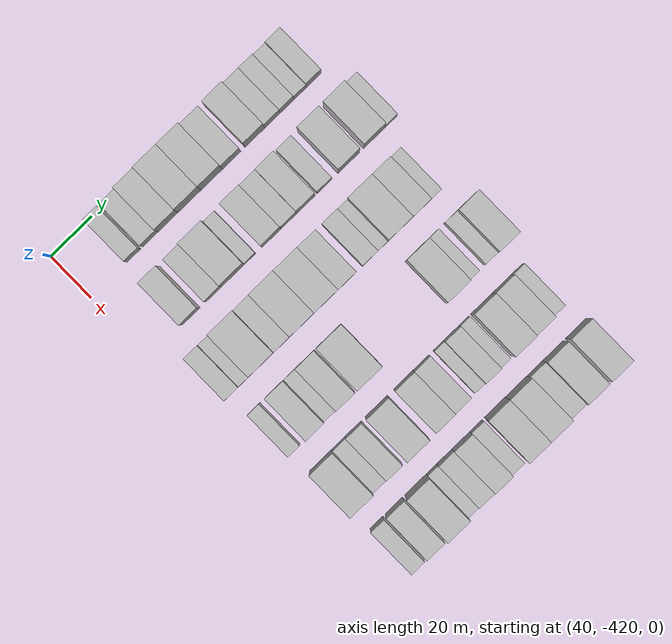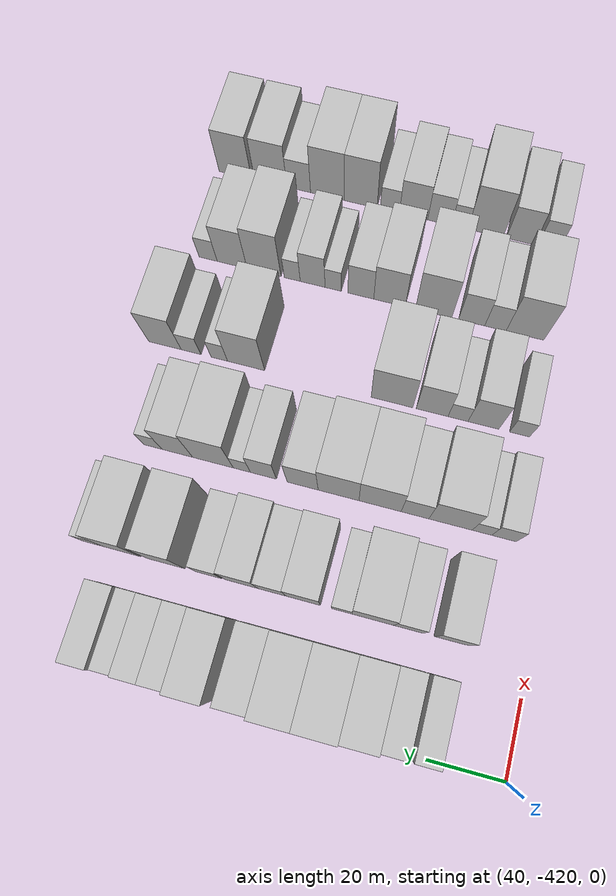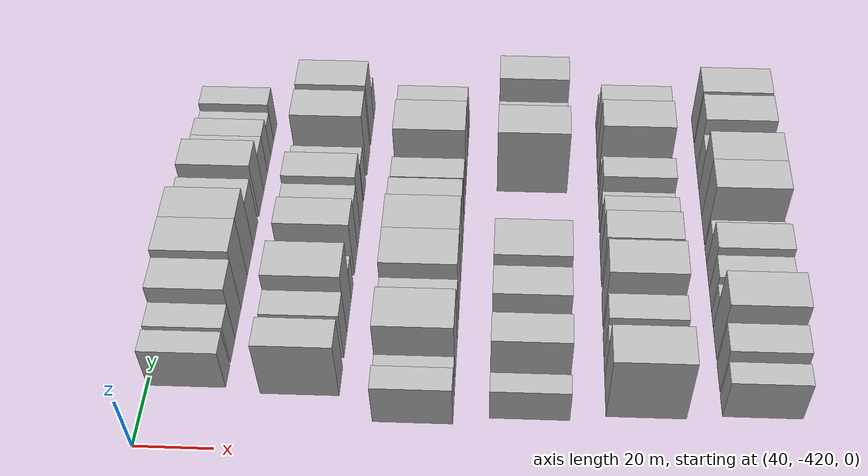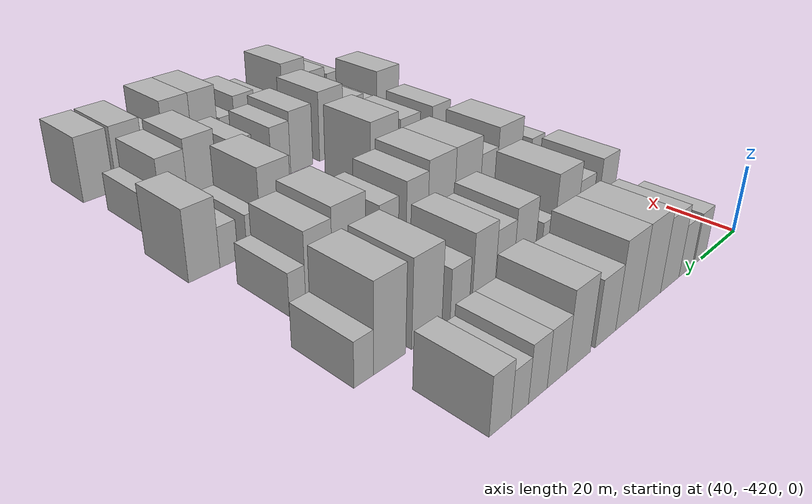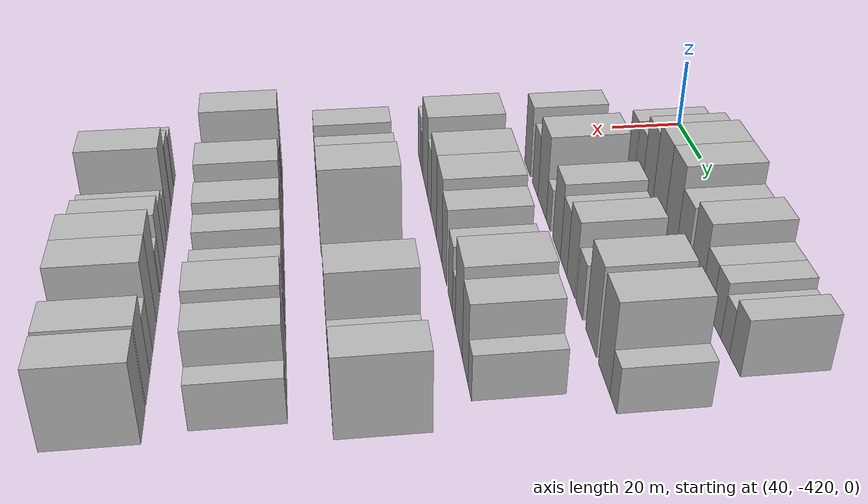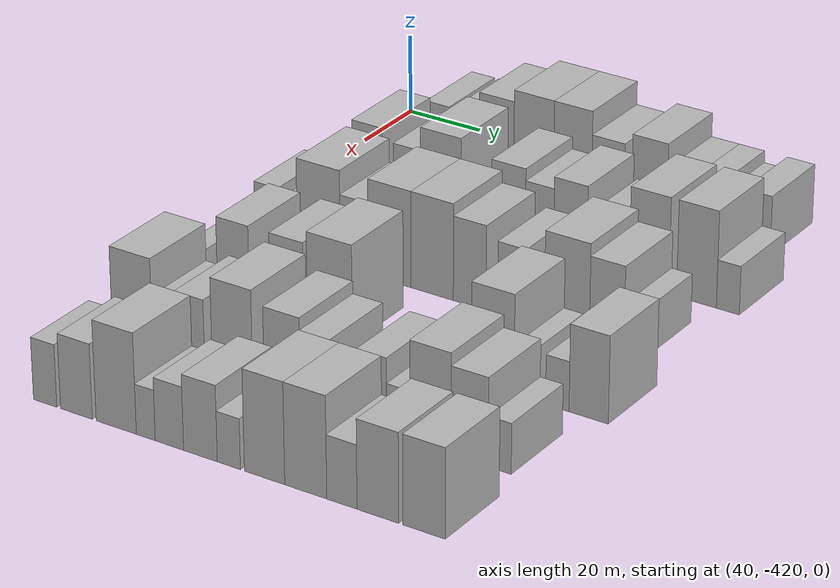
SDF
<sdf version="1.6">
 <world name="default">
  <model name="building_12">
   <static>1</static>
   <pose>50.0000 -399.0358 0 0.000000 0.000000 0.000000</pose>
   <link name="link">
    <pose>0 0 7.50 0 0 0</pose>
    <collision name="collision"><geometry><box><size>20.0000 6.5886 15.0000</size></box></geometry></collision>
    <visual name="visual">
     <cast_shadows>0</cast_shadows>
     <geometry><box><size>20.0000 6.5886 15.0000</size></box></geometry>
     <material>
      <script>
       <uri>model://HANNAS_wall/materials/scripts</uri>
       <uri>model://HANNAS_wall/materials/textures</uri>
       <name>vrc/HANNAS_wall</name>
      </script>
     </material>
    </visual>
   </link>
  </model>
  <model name="building_13">
   <static>1</static>
   <pose>50.0000 -391.0221 0 0.000000 0.000000 0.000000</pose>
   <link name="link">
    <pose>0 0 7.50 0 0 0</pose>
    <collision name="collision"><geometry><box><size>20.0000 7.4388 15.0000</size></box></geometry></collision>
    <visual name="visual">
     <cast_shadows>0</cast_shadows>
     <geometry><box><size>20.0000 7.4388 15.0000</size></box></geometry>
     <material>
      <script>
       <uri>model://HANNAS_wall/materials/scripts</uri>
       <uri>model://HANNAS_wall/materials/textures</uri>
       <name>vrc/HANNAS_wall</name>
      </script>
     </material>
    </visual>
   </link>
  </model>
  <model name="building_14">
   <static>1</static>
   <pose>50.0000 -382.4483 0 0.000000 0.000000 0.000000</pose>
   <link name="link">
    <pose>0 0 10.50 0 0 0</pose>
    <collision name="collision"><geometry><box><size>20.0000 9.7088 21.0000</size></box></geometry></collision>
    <visual name="visual">
     <cast_shadows>0</cast_shadows>
     <geometry><box><size>20.0000 9.7088 21.0000</size></box></geometry>
     <material>
      <script>
       <uri>model://HANNAS_wall/materials/scripts</uri>
       <uri>model://HANNAS_wall/materials/textures</uri>
       <name>vrc/HANNAS_wall</name>
      </script>
     </material>
    </visual>
   </link>
  </model>
  <model name="building_15">
   <static>1</static>
   <pose>50.0000 -372.0800 0 0.000000 0.000000 0.000000</pose>
   <link name="link">
    <pose>0 0 12.00 0 0 0</pose>
    <collision name="collision"><geometry><box><size>20.0000 11.0279 24.0000</size></box></geometry></collision>
    <visual name="visual">
     <cast_shadows>0</cast_shadows>
     <geometry><box><size>20.0000 11.0279 24.0000</size></box></geometry>
     <material>
      <script>
       <uri>model://HANNAS_wall/materials/scripts</uri>
       <uri>model://HANNAS_wall/materials/textures</uri>
       <name>vrc/HANNAS_wall</name>
      </script>
     </material>
    </visual>
   </link>
  </model>
  <model name="building_16">
   <static>1</static>
   <pose>50.0000 -361.3567 0 0.000000 0.000000 0.000000</pose>
   <link name="link">
    <pose>0 0 12.00 0 0 0</pose>
    <collision name="collision"><geometry><box><size>20.0000 10.4185 24.0000</size></box></geometry></collision>
    <visual name="visual">
     <cast_shadows>0</cast_shadows>
     <geometry><box><size>20.0000 10.4185 24.0000</size></box></geometry>
     <material>
      <script>
       <uri>model://HANNAS_wall/materials/scripts</uri>
       <uri>model://HANNAS_wall/materials/textures</uri>
       <name>vrc/HANNAS_wall</name>
      </script>
     </material>
    </visual>
   </link>
  </model>
  <model name="building_17">
   <static>1</static>
   <pose>50.0000 -351.7194 0 0.000000 0.000000 0.000000</pose>
   <link name="link">
    <pose>0 0 9.00 0 0 0</pose>
    <collision name="collision"><geometry><box><size>20.0000 8.8561 18.0000</size></box></geometry></collision>
    <visual name="visual">
     <cast_shadows>0</cast_shadows>
     <geometry><box><size>20.0000 8.8561 18.0000</size></box></geometry>
     <material>
      <script>
       <uri>model://HANNAS_wall/materials/scripts</uri>
       <uri>model://HANNAS_wall/materials/textures</uri>
       <name>vrc/HANNAS_wall</name>
      </script>
     </material>
    </visual>
   </link>
  </model>
  <model name="building_18">
   <static>1</static>
   <pose>50.0000 -340.5252 0 0.000000 0.000000 0.000000</pose>
   <link name="link">
    <pose>0 0 10.50 0 0 0</pose>
    <collision name="collision"><geometry><box><size>20.0000 9.5323 21.0000</size></box></geometry></collision>
    <visual name="visual">
     <cast_shadows>0</cast_shadows>
     <geometry><box><size>20.0000 9.5323 21.0000</size></box></geometry>
     <material>
      <script>
       <uri>model://HANNAS_wall/materials/scripts</uri>
       <uri>model://HANNAS_wall/materials/textures</uri>
       <name>vrc/HANNAS_wall</name>
      </script>
     </material>
    </visual>
   </link>
  </model>
  <model name="building_19">
   <static>1</static>
   <pose>50.0000 -332.0643 0 0.000000 0.000000 0.000000</pose>
   <link name="link">
    <pose>0 0 7.50 0 0 0</pose>
    <collision name="collision"><geometry><box><size>20.0000 7.3896 15.0000</size></box></geometry></collision>
    <visual name="visual">
     <cast_shadows>0</cast_shadows>
     <geometry><box><size>20.0000 7.3896 15.0000</size></box></geometry>
     <material>
      <script>
       <uri>model://HANNAS_wall/materials/scripts</uri>
       <uri>model://HANNAS_wall/materials/textures</uri>
       <name>vrc/HANNAS_wall</name>
      </script>
     </material>
    </visual>
   </link>
  </model>
  <model name="building_20">
   <static>1</static>
   <pose>50.0000 -324.9953 0 0.000000 0.000000 0.000000</pose>
   <link name="link">
    <pose>0 0 7.50 0 0 0</pose>
    <collision name="collision"><geometry><box><size>20.0000 6.7483 15.0000</size></box></geometry></collision>
    <visual name="visual">
     <cast_shadows>0</cast_shadows>
     <geometry><box><size>20.0000 6.7483 15.0000</size></box></geometry>
     <material>
      <script>
       <uri>model://HANNAS_wall/materials/scripts</uri>
       <uri>model://HANNAS_wall/materials/textures</uri>
       <name>vrc/HANNAS_wall</name>
      </script>
     </material>
    </visual>
   </link>
  </model>
  <model name="building_21">
   <static>1</static>
   <pose>50.0000 -318.6482 0 0.000000 0.000000 0.000000</pose>
   <link name="link">
    <pose>0 0 6.00 0 0 0</pose>
    <collision name="collision"><geometry><box><size>20.0000 5.9460 12.0000</size></box></geometry></collision>
    <visual name="visual">
     <cast_shadows>0</cast_shadows>
     <geometry><box><size>20.0000 5.9460 12.0000</size></box></geometry>
     <material>
      <script>
       <uri>model://HANNAS_wall/materials/scripts</uri>
       <uri>model://HANNAS_wall/materials/textures</uri>
       <name>vrc/HANNAS_wall</name>
      </script>
     </material>
    </visual>
   </link>
  </model>
  <model name="building_22">
   <static>1</static>
   <pose>50.0000 -312.0766 0 0.000000 0.000000 0.000000</pose>
   <link name="link">
    <pose>0 0 7.50 0 0 0</pose>
    <collision name="collision"><geometry><box><size>20.0000 7.1972 15.0000</size></box></geometry></collision>
    <visual name="visual">
     <cast_shadows>0</cast_shadows>
     <geometry><box><size>20.0000 7.1972 15.0000</size></box></geometry>
     <material>
      <script>
       <uri>model://HANNAS_wall/materials/scripts</uri>
       <uri>model://HANNAS_wall/materials/textures</uri>
       <name>vrc/HANNAS_wall</name>
      </script>
     </material>
    </visual>
   </link>
  </model>
  <model name="building_129">
   <static>1</static>
   <pose>79.0000 -399.5034 0 0.000000 0.000000 0.000000</pose>
   <link name="link">
    <pose>0 0 10.50 0 0 0</pose>
    <collision name="collision"><geometry><box><size>20.0000 8.5235 21.0000</size></box></geometry></collision>
    <visual name="visual">
     <cast_shadows>0</cast_shadows>
     <geometry><box><size>20.0000 8.5235 21.0000</size></box></geometry>
     <material>
      <script>
       <uri>model://HANNAS_wall/materials/scripts</uri>
       <uri>model://HANNAS_wall/materials/textures</uri>
       <name>vrc/HANNAS_wall</name>
      </script>
     </material>
    </visual>
   </link>
  </model>
  <model name="building_130">
   <static>1</static>
   <pose>79.0000 -388.4443 0 0.000000 0.000000 0.000000</pose>
   <link name="link">
    <pose>0 0 9.00 0 0 0</pose>
    <collision name="collision"><geometry><box><size>20.0000 7.5946 18.0000</size></box></geometry></collision>
    <visual name="visual">
     <cast_shadows>0</cast_shadows>
     <geometry><box><size>20.0000 7.5946 18.0000</size></box></geometry>
     <material>
      <script>
       <uri>model://HANNAS_wall/materials/scripts</uri>
       <uri>model://HANNAS_wall/materials/textures</uri>
       <name>vrc/HANNAS_wall</name>
      </script>
     </material>
    </visual>
   </link>
  </model>
  <model name="building_131">
   <static>1</static>
   <pose>79.0000 -379.1052 0 0.000000 0.000000 0.000000</pose>
   <link name="link">
    <pose>0 0 12.00 0 0 0</pose>
    <collision name="collision"><geometry><box><size>20.0000 11.0837 24.0000</size></box></geometry></collision>
    <visual name="visual">
     <cast_shadows>0</cast_shadows>
     <geometry><box><size>20.0000 11.0837 24.0000</size></box></geometry>
     <material>
      <script>
       <uri>model://HANNAS_wall/materials/scripts</uri>
       <uri>model://HANNAS_wall/materials/textures</uri>
       <name>vrc/HANNAS_wall</name>
      </script>
     </material>
    </visual>
   </link>
  </model>
  <model name="building_132">
   <static>1</static>
   <pose>79.0000 -370.8885 0 0.000000 0.000000 0.000000</pose>
   <link name="link">
    <pose>0 0 6.00 0 0 0</pose>
    <collision name="collision"><geometry><box><size>20.0000 5.3498 12.0000</size></box></geometry></collision>
    <visual name="visual">
     <cast_shadows>0</cast_shadows>
     <geometry><box><size>20.0000 5.3498 12.0000</size></box></geometry>
     <material>
      <script>
       <uri>model://HANNAS_wall/materials/scripts</uri>
       <uri>model://HANNAS_wall/materials/textures</uri>
       <name>vrc/HANNAS_wall</name>
      </script>
     </material>
    </visual>
   </link>
  </model>
  <model name="building_133">
   <static>1</static>
   <pose>79.0000 -360.6384 0 0.000000 0.000000 0.000000</pose>
   <link name="link">
    <pose>0 0 10.50 0 0 0</pose>
    <collision name="collision"><geometry><box><size>20.0000 9.1504 21.0000</size></box></geometry></collision>
    <visual name="visual">
     <cast_shadows>0</cast_shadows>
     <geometry><box><size>20.0000 9.1504 21.0000</size></box></geometry>
     <material>
      <script>
       <uri>model://HANNAS_wall/materials/scripts</uri>
       <uri>model://HANNAS_wall/materials/textures</uri>
       <name>vrc/HANNAS_wall</name>
      </script>
     </material>
    </visual>
   </link>
  </model>
  <model name="building_134">
   <static>1</static>
   <pose>79.0000 -352.2799 0 0.000000 0.000000 0.000000</pose>
   <link name="link">
    <pose>0 0 9.00 0 0 0</pose>
    <collision name="collision"><geometry><box><size>20.0000 7.5666 18.0000</size></box></geometry></collision>
    <visual name="visual">
     <cast_shadows>0</cast_shadows>
     <geometry><box><size>20.0000 7.5666 18.0000</size></box></geometry>
     <material>
      <script>
       <uri>model://HANNAS_wall/materials/scripts</uri>
       <uri>model://HANNAS_wall/materials/textures</uri>
       <name>vrc/HANNAS_wall</name>
      </script>
     </material>
    </visual>
   </link>
  </model>
  <model name="building_135">
   <static>1</static>
   <pose>79.0000 -344.0554 0 0.000000 0.000000 0.000000</pose>
   <link name="link">
    <pose>0 0 10.50 0 0 0</pose>
    <collision name="collision"><geometry><box><size>20.0000 8.8823 21.0000</size></box></geometry></collision>
    <visual name="visual">
     <cast_shadows>0</cast_shadows>
     <geometry><box><size>20.0000 8.8823 21.0000</size></box></geometry>
     <material>
      <script>
       <uri>model://HANNAS_wall/materials/scripts</uri>
       <uri>model://HANNAS_wall/materials/textures</uri>
       <name>vrc/HANNAS_wall</name>
      </script>
     </material>
    </visual>
   </link>
  </model>
  <model name="building_136">
   <static>1</static>
   <pose>79.0000 -335.0588 0 0.000000 0.000000 0.000000</pose>
   <link name="link">
    <pose>0 0 7.50 0 0 0</pose>
    <collision name="collision"><geometry><box><size>20.0000 7.1111 15.0000</size></box></geometry></collision>
    <visual name="visual">
     <cast_shadows>0</cast_shadows>
     <geometry><box><size>20.0000 7.1111 15.0000</size></box></geometry>
     <material>
      <script>
       <uri>model://HANNAS_wall/materials/scripts</uri>
       <uri>model://HANNAS_wall/materials/textures</uri>
       <name>vrc/HANNAS_wall</name>
      </script>
     </material>
    </visual>
   </link>
  </model>
  <model name="building_137">
   <static>1</static>
   <pose>79.0000 -323.3346 0 0.000000 0.000000 0.000000</pose>
   <link name="link">
    <pose>0 0 12.00 0 0 0</pose>
    <collision name="collision"><geometry><box><size>20.0000 10.3372 24.0000</size></box></geometry></collision>
    <visual name="visual">
     <cast_shadows>0</cast_shadows>
     <geometry><box><size>20.0000 10.3372 24.0000</size></box></geometry>
     <material>
      <script>
       <uri>model://HANNAS_wall/materials/scripts</uri>
       <uri>model://HANNAS_wall/materials/textures</uri>
       <name>vrc/HANNAS_wall</name>
      </script>
     </material>
    </visual>
   </link>
  </model>
  <model name="building_138">
   <static>1</static>
   <pose>79.0000 -311.0484 0 0.000000 0.000000 0.000000</pose>
   <link name="link">
    <pose>0 0 12.00 0 0 0</pose>
    <collision name="collision"><geometry><box><size>20.0000 10.2352 24.0000</size></box></geometry></collision>
    <visual name="visual">
     <cast_shadows>0</cast_shadows>
     <geometry><box><size>20.0000 10.2352 24.0000</size></box></geometry>
     <material>
      <script>
       <uri>model://HANNAS_wall/materials/scripts</uri>
       <uri>model://HANNAS_wall/materials/textures</uri>
       <name>vrc/HANNAS_wall</name>
      </script>
     </material>
    </visual>
   </link>
  </model>
  <model name="building_139">
   <static>1</static>
   <pose>79.0000 -303.0020 0 0.000000 0.000000 0.000000</pose>
   <link name="link">
    <pose>0 0 6.00 0 0 0</pose>
    <collision name="collision"><geometry><box><size>20.0000 5.8576 12.0000</size></box></geometry></collision>
    <visual name="visual">
     <cast_shadows>0</cast_shadows>
     <geometry><box><size>20.0000 5.8576 12.0000</size></box></geometry>
     <material>
      <script>
       <uri>model://HANNAS_wall/materials/scripts</uri>
       <uri>model://HANNAS_wall/materials/textures</uri>
       <name>vrc/HANNAS_wall</name>
      </script>
     </material>
    </visual>
   </link>
  </model>
  <model name="building_241">
   <static>1</static>
   <pose>108.0000 -407.6738 0 0.000000 0.000000 0.000000</pose>
   <link name="link">
    <pose>0 0 7.50 0 0 0</pose>
    <collision name="collision"><geometry><box><size>20.0000 6.6363 15.0000</size></box></geometry></collision>
    <visual name="visual">
     <cast_shadows>0</cast_shadows>
     <geometry><box><size>20.0000 6.6363 15.0000</size></box></geometry>
     <material>
      <script>
       <uri>model://HANNAS_wall/materials/scripts</uri>
       <uri>model://HANNAS_wall/materials/textures</uri>
       <name>vrc/HANNAS_wall</name>
      </script>
     </material>
    </visual>
   </link>
  </model>
  <model name="building_242">
   <static>1</static>
   <pose>108.0000 -401.7204 0 0.000000 0.000000 0.000000</pose>
   <link name="link">
    <pose>0 0 6.00 0 0 0</pose>
    <collision name="collision"><geometry><box><size>20.0000 5.2705 12.0000</size></box></geometry></collision>
    <visual name="visual">
     <cast_shadows>0</cast_shadows>
     <geometry><box><size>20.0000 5.2705 12.0000</size></box></geometry>
     <material>
      <script>
       <uri>model://HANNAS_wall/materials/scripts</uri>
       <uri>model://HANNAS_wall/materials/textures</uri>
       <name>vrc/HANNAS_wall</name>
      </script>
     </material>
    </visual>
   </link>
  </model>
  <model name="building_243">
   <static>1</static>
   <pose>108.0000 -393.1576 0 0.000000 0.000000 0.000000</pose>
   <link name="link">
    <pose>0 0 12.00 0 0 0</pose>
    <collision name="collision"><geometry><box><size>20.0000 11.8551 24.0000</size></box></geometry></collision>
    <visual name="visual">
     <cast_shadows>0</cast_shadows>
     <geometry><box><size>20.0000 11.8551 24.0000</size></box></geometry>
     <material>
      <script>
       <uri>model://HANNAS_wall/materials/scripts</uri>
       <uri>model://HANNAS_wall/materials/textures</uri>
       <name>vrc/HANNAS_wall</name>
      </script>
     </material>
    </visual>
   </link>
  </model>
  <model name="building_244">
   <static>1</static>
   <pose>108.0000 -383.4265 0 0.000000 0.000000 0.000000</pose>
   <link name="link">
    <pose>0 0 9.00 0 0 0</pose>
    <collision name="collision"><geometry><box><size>20.0000 7.6070 18.0000</size></box></geometry></collision>
    <visual name="visual">
     <cast_shadows>0</cast_shadows>
     <geometry><box><size>20.0000 7.6070 18.0000</size></box></geometry>
     <material>
      <script>
       <uri>model://HANNAS_wall/materials/scripts</uri>
       <uri>model://HANNAS_wall/materials/textures</uri>
       <name>vrc/HANNAS_wall</name>
      </script>
     </material>
    </visual>
   </link>
  </model>
  <model name="building_245">
   <static>1</static>
   <pose>108.0000 -373.8133 0 0.000000 0.000000 0.000000</pose>
   <link name="link">
    <pose>0 0 12.00 0 0 0</pose>
    <collision name="collision"><geometry><box><size>20.0000 11.6195 24.0000</size></box></geometry></collision>
    <visual name="visual">
     <cast_shadows>0</cast_shadows>
     <geometry><box><size>20.0000 11.6195 24.0000</size></box></geometry>
     <material>
      <script>
       <uri>model://HANNAS_wall/materials/scripts</uri>
       <uri>model://HANNAS_wall/materials/textures</uri>
       <name>vrc/HANNAS_wall</name>
      </script>
     </material>
    </visual>
   </link>
  </model>
  <model name="building_246">
   <static>1</static>
   <pose>108.0000 -362.3462 0 0.000000 0.000000 0.000000</pose>
   <link name="link">
    <pose>0 0 12.00 0 0 0</pose>
    <collision name="collision"><geometry><box><size>20.0000 11.3146 24.0000</size></box></geometry></collision>
    <visual name="visual">
     <cast_shadows>0</cast_shadows>
     <geometry><box><size>20.0000 11.3146 24.0000</size></box></geometry>
     <material>
      <script>
       <uri>model://HANNAS_wall/materials/scripts</uri>
       <uri>model://HANNAS_wall/materials/textures</uri>
       <name>vrc/HANNAS_wall</name>
      </script>
     </material>
    </visual>
   </link>
  </model>
  <model name="building_247">
   <static>1</static>
   <pose>108.0000 -352.3425 0 0.000000 0.000000 0.000000</pose>
   <link name="link">
    <pose>0 0 10.50 0 0 0</pose>
    <collision name="collision"><geometry><box><size>20.0000 8.6928 21.0000</size></box></geometry></collision>
    <visual name="visual">
     <cast_shadows>0</cast_shadows>
     <geometry><box><size>20.0000 8.6928 21.0000</size></box></geometry>
     <material>
      <script>
       <uri>model://HANNAS_wall/materials/scripts</uri>
       <uri>model://HANNAS_wall/materials/textures</uri>
       <name>vrc/HANNAS_wall</name>
      </script>
     </material>
    </visual>
   </link>
  </model>
  <model name="building_248">
   <static>1</static>
   <pose>108.0000 -341.3322 0 0.000000 0.000000 0.000000</pose>
   <link name="link">
    <pose>0 0 9.00 0 0 0</pose>
    <collision name="collision"><geometry><box><size>20.0000 7.3279 18.0000</size></box></geometry></collision>
    <visual name="visual">
     <cast_shadows>0</cast_shadows>
     <geometry><box><size>20.0000 7.3279 18.0000</size></box></geometry>
     <material>
      <script>
       <uri>model://HANNAS_wall/materials/scripts</uri>
       <uri>model://HANNAS_wall/materials/textures</uri>
       <name>vrc/HANNAS_wall</name>
      </script>
     </material>
    </visual>
   </link>
  </model>
  <model name="building_249">
   <static>1</static>
   <pose>108.0000 -335.2415 0 0.000000 0.000000 0.000000</pose>
   <link name="link">
    <pose>0 0 6.00 0 0 0</pose>
    <collision name="collision"><geometry><box><size>20.0000 4.8535 12.0000</size></box></geometry></collision>
    <visual name="visual">
     <cast_shadows>0</cast_shadows>
     <geometry><box><size>20.0000 4.8535 12.0000</size></box></geometry>
     <material>
      <script>
       <uri>model://HANNAS_wall/materials/scripts</uri>
       <uri>model://HANNAS_wall/materials/textures</uri>
       <name>vrc/HANNAS_wall</name>
      </script>
     </material>
    </visual>
   </link>
  </model>
  <model name="building_250">
   <static>1</static>
   <pose>108.0000 -327.0303 0 0.000000 0.000000 0.000000</pose>
   <link name="link">
    <pose>0 0 12.00 0 0 0</pose>
    <collision name="collision"><geometry><box><size>20.0000 11.5688 24.0000</size></box></geometry></collision>
    <visual name="visual">
     <cast_shadows>0</cast_shadows>
     <geometry><box><size>20.0000 11.5688 24.0000</size></box></geometry>
     <material>
      <script>
       <uri>model://HANNAS_wall/materials/scripts</uri>
       <uri>model://HANNAS_wall/materials/textures</uri>
       <name>vrc/HANNAS_wall</name>
      </script>
     </material>
    </visual>
   </link>
  </model>
  <model name="building_251">
   <static>1</static>
   <pose>108.0000 -316.8355 0 0.000000 0.000000 0.000000</pose>
   <link name="link">
    <pose>0 0 10.50 0 0 0</pose>
    <collision name="collision"><geometry><box><size>20.0000 8.8208 21.0000</size></box></geometry></collision>
    <visual name="visual">
     <cast_shadows>0</cast_shadows>
     <geometry><box><size>20.0000 8.8208 21.0000</size></box></geometry>
     <material>
      <script>
       <uri>model://HANNAS_wall/materials/scripts</uri>
       <uri>model://HANNAS_wall/materials/textures</uri>
       <name>vrc/HANNAS_wall</name>
      </script>
     </material>
    </visual>
   </link>
  </model>
  <model name="building_252">
   <static>1</static>
   <pose>108.0000 -309.8223 0 0.000000 0.000000 0.000000</pose>
   <link name="link">
    <pose>0 0 6.00 0 0 0</pose>
    <collision name="collision"><geometry><box><size>20.0000 5.2057 12.0000</size></box></geometry></collision>
    <visual name="visual">
     <cast_shadows>0</cast_shadows>
     <geometry><box><size>20.0000 5.2057 12.0000</size></box></geometry>
     <material>
      <script>
       <uri>model://HANNAS_wall/materials/scripts</uri>
       <uri>model://HANNAS_wall/materials/textures</uri>
       <name>vrc/HANNAS_wall</name>
      </script>
     </material>
    </visual>
   </link>
  </model>
  <model name="building_355">
   <static>1</static>
   <pose>137.0000 -406.1504 0 0.000000 0.000000 0.000000</pose>
   <link name="link">
    <pose>0 0 6.00 0 0 0</pose>
    <collision name="collision"><geometry><box><size>20.0000 5.6153 12.0000</size></box></geometry></collision>
    <visual name="visual">
     <cast_shadows>0</cast_shadows>
     <geometry><box><size>20.0000 5.6153 12.0000</size></box></geometry>
     <material>
      <script>
       <uri>model://HANNAS_wall/materials/scripts</uri>
       <uri>model://HANNAS_wall/materials/textures</uri>
       <name>vrc/HANNAS_wall</name>
      </script>
     </material>
    </visual>
   </link>
  </model>
  <model name="building_356">
   <static>1</static>
   <pose>137.0000 -395.9926 0 0.000000 0.000000 0.000000</pose>
   <link name="link">
    <pose>0 0 10.50 0 0 0</pose>
    <collision name="collision"><geometry><box><size>20.0000 8.7003 21.0000</size></box></geometry></collision>
    <visual name="visual">
     <cast_shadows>0</cast_shadows>
     <geometry><box><size>20.0000 8.7003 21.0000</size></box></geometry>
     <material>
      <script>
       <uri>model://HANNAS_wall/materials/scripts</uri>
       <uri>model://HANNAS_wall/materials/textures</uri>
       <name>vrc/HANNAS_wall</name>
      </script>
     </material>
    </visual>
   </link>
  </model>
  <model name="building_357">
   <static>1</static>
   <pose>137.0000 -388.8164 0 0.000000 0.000000 0.000000</pose>
   <link name="link">
    <pose>0 0 6.00 0 0 0</pose>
    <collision name="collision"><geometry><box><size>20.0000 5.6521 12.0000</size></box></geometry></collision>
    <visual name="visual">
     <cast_shadows>0</cast_shadows>
     <geometry><box><size>20.0000 5.6521 12.0000</size></box></geometry>
     <material>
      <script>
       <uri>model://HANNAS_wall/materials/scripts</uri>
       <uri>model://HANNAS_wall/materials/textures</uri>
       <name>vrc/HANNAS_wall</name>
      </script>
     </material>
    </visual>
   </link>
  </model>
  <model name="building_358">
   <static>1</static>
   <pose>137.0000 -381.4883 0 0.000000 0.000000 0.000000</pose>
   <link name="link">
    <pose>0 0 10.50 0 0 0</pose>
    <collision name="collision"><geometry><box><size>20.0000 9.0042 21.0000</size></box></geometry></collision>
    <visual name="visual">
     <cast_shadows>0</cast_shadows>
     <geometry><box><size>20.0000 9.0042 21.0000</size></box></geometry>
     <material>
      <script>
       <uri>model://HANNAS_wall/materials/scripts</uri>
       <uri>model://HANNAS_wall/materials/textures</uri>
       <name>vrc/HANNAS_wall</name>
      </script>
     </material>
    </visual>
   </link>
  </model>
  <model name="building_359">
   <static>1</static>
   <pose>137.0000 -370.0218 0 0.000000 0.000000 0.000000</pose>
   <link name="link">
    <pose>0 0 12.00 0 0 0</pose>
    <collision name="collision"><geometry><box><size>20.0000 11.9287 24.0000</size></box></geometry></collision>
    <visual name="visual">
     <cast_shadows>0</cast_shadows>
     <geometry><box><size>20.0000 11.9287 24.0000</size></box></geometry>
     <material>
      <script>
       <uri>model://HANNAS_wall/materials/scripts</uri>
       <uri>model://HANNAS_wall/materials/textures</uri>
       <name>vrc/HANNAS_wall</name>
      </script>
     </material>
    </visual>
   </link>
  </model>
  <model name="building_360">
   <static>1</static>
   <pose>137.0000 -327.7165 0 0.000000 0.000000 0.000000</pose>
   <link name="link">
    <pose>0 0 12.00 0 0 0</pose>
    <collision name="collision"><geometry><box><size>20.0000 10.8940 24.0000</size></box></geometry></collision>
    <visual name="visual">
     <cast_shadows>0</cast_shadows>
     <geometry><box><size>20.0000 10.8940 24.0000</size></box></geometry>
     <material>
      <script>
       <uri>model://HANNAS_wall/materials/scripts</uri>
       <uri>model://HANNAS_wall/materials/textures</uri>
       <name>vrc/HANNAS_wall</name>
      </script>
     </material>
    </visual>
   </link>
  </model>
  <model name="building_361">
   <static>1</static>
   <pose>137.0000 -319.8315 0 0.000000 0.000000 0.000000</pose>
   <link name="link">
    <pose>0 0 6.00 0 0 0</pose>
    <collision name="collision"><geometry><box><size>20.0000 4.8759 12.0000</size></box></geometry></collision>
    <visual name="visual">
     <cast_shadows>0</cast_shadows>
     <geometry><box><size>20.0000 4.8759 12.0000</size></box></geometry>
     <material>
      <script>
       <uri>model://HANNAS_wall/materials/scripts</uri>
       <uri>model://HANNAS_wall/materials/textures</uri>
       <name>vrc/HANNAS_wall</name>
      </script>
     </material>
    </visual>
   </link>
  </model>
  <model name="building_362">
   <static>1</static>
   <pose>137.0000 -311.4621 0 0.000000 0.000000 0.000000</pose>
   <link name="link">
    <pose>0 0 6.00 0 0 0</pose>
    <collision name="collision"><geometry><box><size>20.0000 5.8629 12.0000</size></box></geometry></collision>
    <visual name="visual">
     <cast_shadows>0</cast_shadows>
     <geometry><box><size>20.0000 5.8629 12.0000</size></box></geometry>
     <material>
      <script>
       <uri>model://HANNAS_wall/materials/scripts</uri>
       <uri>model://HANNAS_wall/materials/textures</uri>
       <name>vrc/HANNAS_wall</name>
      </script>
     </material>
    </visual>
   </link>
  </model>
  <model name="building_363">
   <static>1</static>
   <pose>137.0000 -303.6726 0 0.000000 0.000000 0.000000</pose>
   <link name="link">
    <pose>0 0 10.50 0 0 0</pose>
    <collision name="collision"><geometry><box><size>20.0000 9.7161 21.0000</size></box></geometry></collision>
    <visual name="visual">
     <cast_shadows>0</cast_shadows>
     <geometry><box><size>20.0000 9.7161 21.0000</size></box></geometry>
     <material>
      <script>
       <uri>model://HANNAS_wall/materials/scripts</uri>
       <uri>model://HANNAS_wall/materials/textures</uri>
       <name>vrc/HANNAS_wall</name>
      </script>
     </material>
    </visual>
   </link>
  </model>
  <model name="building_462">
   <static>1</static>
   <pose>166.0000 -402.0019 0 0.000000 0.000000 0.000000</pose>
   <link name="link">
    <pose>0 0 12.00 0 0 0</pose>
    <collision name="collision"><geometry><box><size>20.0000 10.9740 24.0000</size></box></geometry></collision>
    <visual name="visual">
     <cast_shadows>0</cast_shadows>
     <geometry><box><size>20.0000 10.9740 24.0000</size></box></geometry>
     <material>
      <script>
       <uri>model://HANNAS_wall/materials/scripts</uri>
       <uri>model://HANNAS_wall/materials/textures</uri>
       <name>vrc/HANNAS_wall</name>
      </script>
     </material>
    </visual>
   </link>
  </model>
  <model name="building_463">
   <static>1</static>
   <pose>166.0000 -393.4017 0 0.000000 0.000000 0.000000</pose>
   <link name="link">
    <pose>0 0 7.50 0 0 0</pose>
    <collision name="collision"><geometry><box><size>20.0000 6.2264 15.0000</size></box></geometry></collision>
    <visual name="visual">
     <cast_shadows>0</cast_shadows>
     <geometry><box><size>20.0000 6.2264 15.0000</size></box></geometry>
     <material>
      <script>
       <uri>model://HANNAS_wall/materials/scripts</uri>
       <uri>model://HANNAS_wall/materials/textures</uri>
       <name>vrc/HANNAS_wall</name>
      </script>
     </material>
    </visual>
   </link>
  </model>
  <model name="building_464">
   <static>1</static>
   <pose>166.0000 -386.4477 0 0.000000 0.000000 0.000000</pose>
   <link name="link">
    <pose>0 0 9.00 0 0 0</pose>
    <collision name="collision"><geometry><box><size>20.0000 7.6815 18.0000</size></box></geometry></collision>
    <visual name="visual">
     <cast_shadows>0</cast_shadows>
     <geometry><box><size>20.0000 7.6815 18.0000</size></box></geometry>
     <material>
      <script>
       <uri>model://HANNAS_wall/materials/scripts</uri>
       <uri>model://HANNAS_wall/materials/textures</uri>
       <name>vrc/HANNAS_wall</name>
      </script>
     </material>
    </visual>
   </link>
  </model>
  <model name="building_465">
   <static>1</static>
   <pose>166.0000 -375.2529 0 0.000000 0.000000 0.000000</pose>
   <link name="link">
    <pose>0 0 12.00 0 0 0</pose>
    <collision name="collision"><geometry><box><size>20.0000 10.7082 24.0000</size></box></geometry></collision>
    <visual name="visual">
     <cast_shadows>0</cast_shadows>
     <geometry><box><size>20.0000 10.7082 24.0000</size></box></geometry>
     <material>
      <script>
       <uri>model://HANNAS_wall/materials/scripts</uri>
       <uri>model://HANNAS_wall/materials/textures</uri>
       <name>vrc/HANNAS_wall</name>
      </script>
     </material>
    </visual>
   </link>
  </model>
  <model name="building_466">
   <static>1</static>
   <pose>166.0000 -362.2132 0 0.000000 0.000000 0.000000</pose>
   <link name="link">
    <pose>0 0 10.50 0 0 0</pose>
    <collision name="collision"><geometry><box><size>20.0000 9.3711 21.0000</size></box></geometry></collision>
    <visual name="visual">
     <cast_shadows>0</cast_shadows>
     <geometry><box><size>20.0000 9.3711 21.0000</size></box></geometry>
     <material>
      <script>
       <uri>model://HANNAS_wall/materials/scripts</uri>
       <uri>model://HANNAS_wall/materials/textures</uri>
       <name>vrc/HANNAS_wall</name>
      </script>
     </material>
    </visual>
   </link>
  </model>
  <model name="building_467">
   <static>1</static>
   <pose>166.0000 -353.6832 0 0.000000 0.000000 0.000000</pose>
   <link name="link">
    <pose>0 0 9.00 0 0 0</pose>
    <collision name="collision"><geometry><box><size>20.0000 7.6889 18.0000</size></box></geometry></collision>
    <visual name="visual">
     <cast_shadows>0</cast_shadows>
     <geometry><box><size>20.0000 7.6889 18.0000</size></box></geometry>
     <material>
      <script>
       <uri>model://HANNAS_wall/materials/scripts</uri>
       <uri>model://HANNAS_wall/materials/textures</uri>
       <name>vrc/HANNAS_wall</name>
      </script>
     </material>
    </visual>
   </link>
  </model>
  <model name="building_468">
   <static>1</static>
   <pose>166.0000 -345.3970 0 0.000000 0.000000 0.000000</pose>
   <link name="link">
    <pose>0 0 6.00 0 0 0</pose>
    <collision name="collision"><geometry><box><size>20.0000 4.8835 12.0000</size></box></geometry></collision>
    <visual name="visual">
     <cast_shadows>0</cast_shadows>
     <geometry><box><size>20.0000 4.8835 12.0000</size></box></geometry>
     <material>
      <script>
       <uri>model://HANNAS_wall/materials/scripts</uri>
       <uri>model://HANNAS_wall/materials/textures</uri>
       <name>vrc/HANNAS_wall</name>
      </script>
     </material>
    </visual>
   </link>
  </model>
  <model name="building_469">
   <static>1</static>
   <pose>166.0000 -339.2104 0 0.000000 0.000000 0.000000</pose>
   <link name="link">
    <pose>0 0 9.00 0 0 0</pose>
    <collision name="collision"><geometry><box><size>20.0000 7.4898 18.0000</size></box></geometry></collision>
    <visual name="visual">
     <cast_shadows>0</cast_shadows>
     <geometry><box><size>20.0000 7.4898 18.0000</size></box></geometry>
     <material>
      <script>
       <uri>model://HANNAS_wall/materials/scripts</uri>
       <uri>model://HANNAS_wall/materials/textures</uri>
       <name>vrc/HANNAS_wall</name>
      </script>
     </material>
    </visual>
   </link>
  </model>
  <model name="building_470">
   <static>1</static>
   <pose>166.0000 -333.0511 0 0.000000 0.000000 0.000000</pose>
   <link name="link">
    <pose>0 0 6.00 0 0 0</pose>
    <collision name="collision"><geometry><box><size>20.0000 4.8288 12.0000</size></box></geometry></collision>
    <visual name="visual">
     <cast_shadows>0</cast_shadows>
     <geometry><box><size>20.0000 4.8288 12.0000</size></box></geometry>
     <material>
      <script>
       <uri>model://HANNAS_wall/materials/scripts</uri>
       <uri>model://HANNAS_wall/materials/textures</uri>
       <name>vrc/HANNAS_wall</name>
      </script>
     </material>
    </visual>
   </link>
  </model>
  <model name="building_471">
   <static>1</static>
   <pose>166.0000 -324.4629 0 0.000000 0.000000 0.000000</pose>
   <link name="link">
    <pose>0 0 12.00 0 0 0</pose>
    <collision name="collision"><geometry><box><size>20.0000 10.3476 24.0000</size></box></geometry></collision>
    <visual name="visual">
     <cast_shadows>0</cast_shadows>
     <geometry><box><size>20.0000 10.3476 24.0000</size></box></geometry>
     <material>
      <script>
       <uri>model://HANNAS_wall/materials/scripts</uri>
       <uri>model://HANNAS_wall/materials/textures</uri>
       <name>vrc/HANNAS_wall</name>
      </script>
     </material>
    </visual>
   </link>
  </model>
  <model name="building_472">
   <static>1</static>
   <pose>166.0000 -314.7357 0 0.000000 0.000000 0.000000</pose>
   <link name="link">
    <pose>0 0 10.50 0 0 0</pose>
    <collision name="collision"><geometry><box><size>20.0000 9.1068 21.0000</size></box></geometry></collision>
    <visual name="visual">
     <cast_shadows>0</cast_shadows>
     <geometry><box><size>20.0000 9.1068 21.0000</size></box></geometry>
     <material>
      <script>
       <uri>model://HANNAS_wall/materials/scripts</uri>
       <uri>model://HANNAS_wall/materials/textures</uri>
       <name>vrc/HANNAS_wall</name>
      </script>
     </material>
    </visual>
   </link>
  </model>
  <model name="building_473">
   <static>1</static>
   <pose>166.0000 -307.3898 0 0.000000 0.000000 0.000000</pose>
   <link name="link">
    <pose>0 0 6.00 0 0 0</pose>
    <collision name="collision"><geometry><box><size>20.0000 5.5851 12.0000</size></box></geometry></collision>
    <visual name="visual">
     <cast_shadows>0</cast_shadows>
     <geometry><box><size>20.0000 5.5851 12.0000</size></box></geometry>
     <material>
      <script>
       <uri>model://HANNAS_wall/materials/scripts</uri>
       <uri>model://HANNAS_wall/materials/textures</uri>
       <name>vrc/HANNAS_wall</name>
      </script>
     </material>
    </visual>
   </link>
  </model>
  <model name="building_576">
   <static>1</static>
   <pose>195.0000 -403.3436 0 0.000000 0.000000 0.000000</pose>
   <link name="link">
    <pose>0 0 7.50 0 0 0</pose>
    <collision name="collision"><geometry><box><size>20.0000 6.2657 15.0000</size></box></geometry></collision>
    <visual name="visual">
     <cast_shadows>0</cast_shadows>
     <geometry><box><size>20.0000 6.2657 15.0000</size></box></geometry>
     <material>
      <script>
       <uri>model://HANNAS_wall/materials/scripts</uri>
       <uri>model://HANNAS_wall/materials/textures</uri>
       <name>vrc/HANNAS_wall</name>
      </script>
     </material>
    </visual>
   </link>
  </model>
  <model name="building_577">
   <static>1</static>
   <pose>195.0000 -394.9673 0 0.000000 0.000000 0.000000</pose>
   <link name="link">
    <pose>0 0 9.00 0 0 0</pose>
    <collision name="collision"><geometry><box><size>20.0000 8.4869 18.0000</size></box></geometry></collision>
    <visual name="visual">
     <cast_shadows>0</cast_shadows>
     <geometry><box><size>20.0000 8.4869 18.0000</size></box></geometry>
     <material>
      <script>
       <uri>model://HANNAS_wall/materials/scripts</uri>
       <uri>model://HANNAS_wall/materials/textures</uri>
       <name>vrc/HANNAS_wall</name>
      </script>
     </material>
    </visual>
   </link>
  </model>
  <model name="building_578">
   <static>1</static>
   <pose>195.0000 -384.4191 0 0.000000 0.000000 0.000000</pose>
   <link name="link">
    <pose>0 0 12.00 0 0 0</pose>
    <collision name="collision"><geometry><box><size>20.0000 10.6096 24.0000</size></box></geometry></collision>
    <visual name="visual">
     <cast_shadows>0</cast_shadows>
     <geometry><box><size>20.0000 10.6096 24.0000</size></box></geometry>
     <material>
      <script>
       <uri>model://HANNAS_wall/materials/scripts</uri>
       <uri>model://HANNAS_wall/materials/textures</uri>
       <name>vrc/HANNAS_wall</name>
      </script>
     </material>
    </visual>
   </link>
  </model>
  <model name="building_579">
   <static>1</static>
   <pose>195.0000 -376.6390 0 0.000000 0.000000 0.000000</pose>
   <link name="link">
    <pose>0 0 6.00 0 0 0</pose>
    <collision name="collision"><geometry><box><size>20.0000 4.9507 12.0000</size></box></geometry></collision>
    <visual name="visual">
     <cast_shadows>0</cast_shadows>
     <geometry><box><size>20.0000 4.9507 12.0000</size></box></geometry>
     <material>
      <script>
       <uri>model://HANNAS_wall/materials/scripts</uri>
       <uri>model://HANNAS_wall/materials/textures</uri>
       <name>vrc/HANNAS_wall</name>
      </script>
     </material>
    </visual>
   </link>
  </model>
  <model name="building_580">
   <static>1</static>
   <pose>195.0000 -370.4906 0 0.000000 0.000000 0.000000</pose>
   <link name="link">
    <pose>0 0 7.50 0 0 0</pose>
    <collision name="collision"><geometry><box><size>20.0000 7.3461 15.0000</size></box></geometry></collision>
    <visual name="visual">
     <cast_shadows>0</cast_shadows>
     <geometry><box><size>20.0000 7.3461 15.0000</size></box></geometry>
     <material>
      <script>
       <uri>model://HANNAS_wall/materials/scripts</uri>
       <uri>model://HANNAS_wall/materials/textures</uri>
       <name>vrc/HANNAS_wall</name>
      </script>
     </material>
    </visual>
   </link>
  </model>
  <model name="building_581">
   <static>1</static>
   <pose>195.0000 -362.4844 0 0.000000 0.000000 0.000000</pose>
   <link name="link">
    <pose>0 0 9.00 0 0 0</pose>
    <collision name="collision"><geometry><box><size>20.0000 8.6662 18.0000</size></box></geometry></collision>
    <visual name="visual">
     <cast_shadows>0</cast_shadows>
     <geometry><box><size>20.0000 8.6662 18.0000</size></box></geometry>
     <material>
      <script>
       <uri>model://HANNAS_wall/materials/scripts</uri>
       <uri>model://HANNAS_wall/materials/textures</uri>
       <name>vrc/HANNAS_wall</name>
      </script>
     </material>
    </visual>
   </link>
  </model>
  <model name="building_582">
   <static>1</static>
   <pose>195.0000 -355.2005 0 0.000000 0.000000 0.000000</pose>
   <link name="link">
    <pose>0 0 6.00 0 0 0</pose>
    <collision name="collision"><geometry><box><size>20.0000 5.9016 12.0000</size></box></geometry></collision>
    <visual name="visual">
     <cast_shadows>0</cast_shadows>
     <geometry><box><size>20.0000 5.9016 12.0000</size></box></geometry>
     <material>
      <script>
       <uri>model://HANNAS_wall/materials/scripts</uri>
       <uri>model://HANNAS_wall/materials/textures</uri>
       <name>vrc/HANNAS_wall</name>
      </script>
     </material>
    </visual>
   </link>
  </model>
  <model name="building_583">
   <static>1</static>
   <pose>195.0000 -346.1552 0 0.000000 0.000000 0.000000</pose>
   <link name="link">
    <pose>0 0 12.00 0 0 0</pose>
    <collision name="collision"><geometry><box><size>20.0000 10.1890 24.0000</size></box></geometry></collision>
    <visual name="visual">
     <cast_shadows>0</cast_shadows>
     <geometry><box><size>20.0000 10.1890 24.0000</size></box></geometry>
     <material>
      <script>
       <uri>model://HANNAS_wall/materials/scripts</uri>
       <uri>model://HANNAS_wall/materials/textures</uri>
       <name>vrc/HANNAS_wall</name>
      </script>
     </material>
    </visual>
   </link>
  </model>
  <model name="building_584">
   <static>1</static>
   <pose>195.0000 -335.8315 0 0.000000 0.000000 0.000000</pose>
   <link name="link">
    <pose>0 0 12.00 0 0 0</pose>
    <collision name="collision"><geometry><box><size>20.0000 10.4584 24.0000</size></box></geometry></collision>
    <visual name="visual">
     <cast_shadows>0</cast_shadows>
     <geometry><box><size>20.0000 10.4584 24.0000</size></box></geometry>
     <material>
      <script>
       <uri>model://HANNAS_wall/materials/scripts</uri>
       <uri>model://HANNAS_wall/materials/textures</uri>
       <name>vrc/HANNAS_wall</name>
      </script>
     </material>
    </visual>
   </link>
  </model>
  <model name="building_585">
   <static>1</static>
   <pose>195.0000 -326.8740 0 0.000000 0.000000 0.000000</pose>
   <link name="link">
    <pose>0 0 7.50 0 0 0</pose>
    <collision name="collision"><geometry><box><size>20.0000 7.4564 15.0000</size></box></geometry></collision>
    <visual name="visual">
     <cast_shadows>0</cast_shadows>
     <geometry><box><size>20.0000 7.4564 15.0000</size></box></geometry>
     <material>
      <script>
       <uri>model://HANNAS_wall/materials/scripts</uri>
       <uri>model://HANNAS_wall/materials/textures</uri>
       <name>vrc/HANNAS_wall</name>
      </script>
     </material>
    </visual>
   </link>
  </model>
  <model name="building_586">
   <static>1</static>
   <pose>195.0000 -318.0636 0 0.000000 0.000000 0.000000</pose>
   <link name="link">
    <pose>0 0 10.50 0 0 0</pose>
    <collision name="collision"><geometry><box><size>20.0000 10.1645 21.0000</size></box></geometry></collision>
    <visual name="visual">
     <cast_shadows>0</cast_shadows>
     <geometry><box><size>20.0000 10.1645 21.0000</size></box></geometry>
     <material>
      <script>
       <uri>model://HANNAS_wall/materials/scripts</uri>
       <uri>model://HANNAS_wall/materials/textures</uri>
       <name>vrc/HANNAS_wall</name>
      </script>
     </material>
    </visual>
   </link>
  </model>
  <model name="building_587">
   <static>1</static>
   <pose>195.0000 -306.8700 0 0.000000 0.000000 0.000000</pose>
   <link name="link">
    <pose>0 0 10.50 0 0 0</pose>
    <collision name="collision"><geometry><box><size>20.0000 10.2228 21.0000</size></box></geometry></collision>
    <visual name="visual">
     <cast_shadows>0</cast_shadows>
     <geometry><box><size>20.0000 10.2228 21.0000</size></box></geometry>
     <material>
      <script>
       <uri>model://HANNAS_wall/materials/scripts</uri>
       <uri>model://HANNAS_wall/materials/textures</uri>
       <name>vrc/HANNAS_wall</name>
      </script>
     </material>
    </visual>
   </link>
  </model>
 </world>
</sdf>
